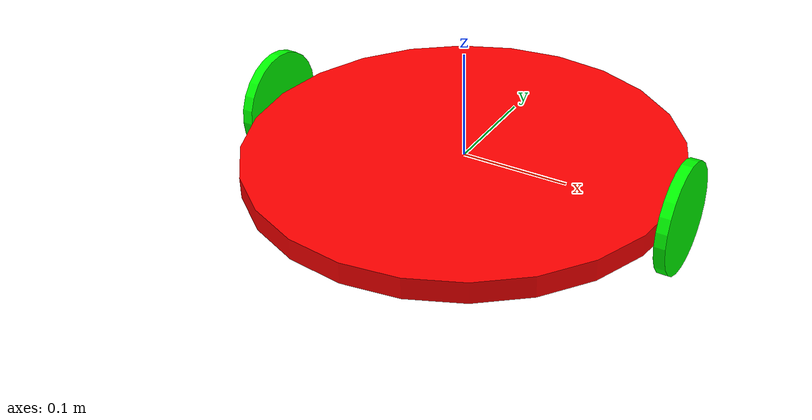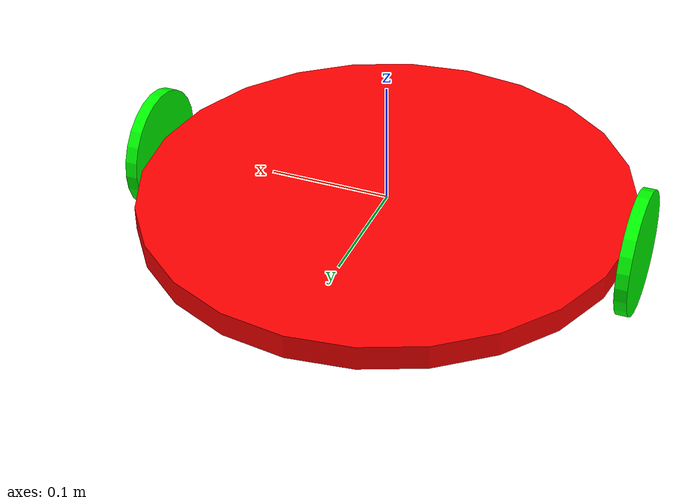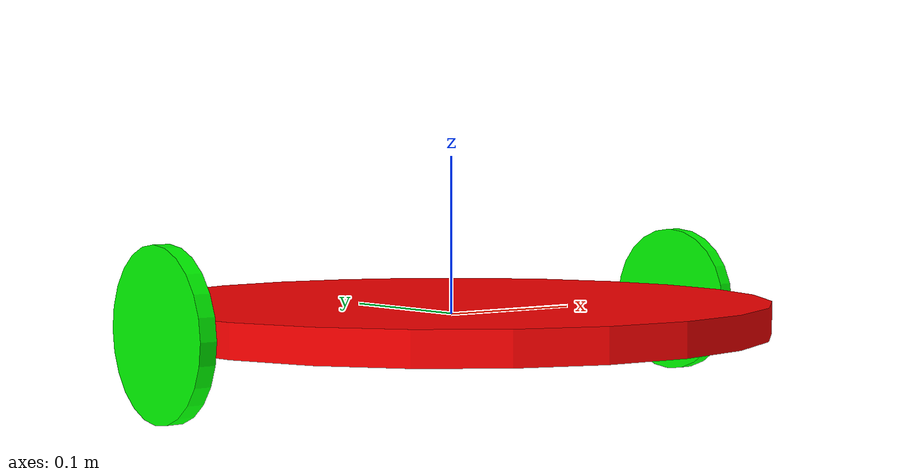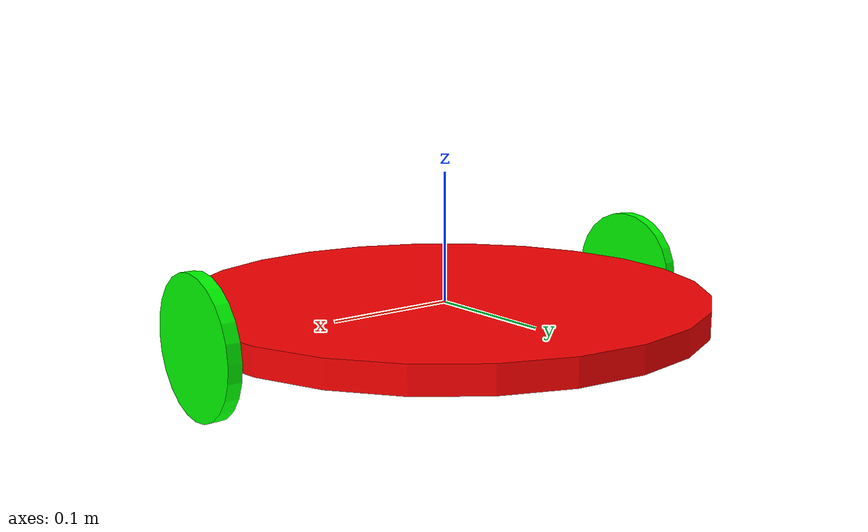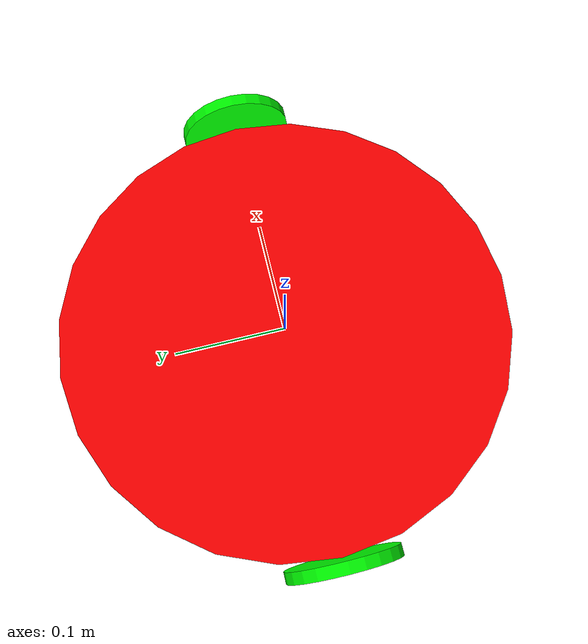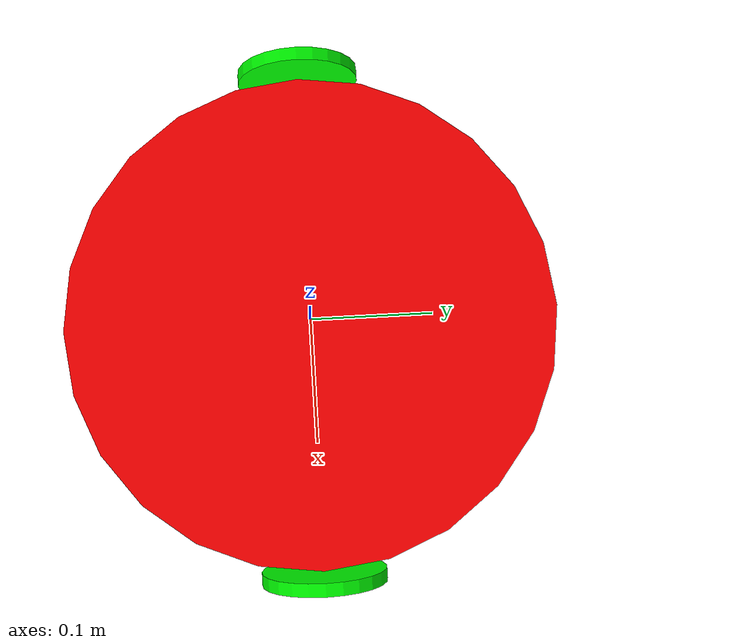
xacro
<?xml version="1.0"?>
<robot xmlns:xacro="http://www.ros.org/wiki/xacro" name="test_bot">

	<xacro:property name = "main_body_radius" value = "0.2"/>
	<xacro:property name = "main_body_length" value = "0.02"/>
	<xacro:property name = "main_body_mass" value = "1"/>
	<xacro:property name = "wheel_radius" value = "0.05"/>
	<xacro:property name = "wheel_length" value = "0.01"/>
	<xacro:property name = "wheel_mass" value = "0.2"/>

	<xacro:property name = "pie" value = "3.14159265359"/>
	<xacro:property name = "deg_to_rad" value = "${pie/180.}"/>

	<macro name="cylinder_inertia" params="m r h">
		<inertial>
			<mass value = "${m}"/>
			<inertia ixx ="${m*(3*r*r+h*h)/12}" ixy = "0" ixz = "0" iyy = "${m*(3*r*r+h*h)/12}" iyz = "0" izz = "${m*r*r/2}" />
		</inertial>
	</macro>

	<xacro:macro name = "wheel" params="name radius length">
		<link name = "${name}">
			<visual>
				<geometry>
					<cylinder length = "${length}" radius = "${radius}"/>
				</geometry>
				<origin rpy = "0 ${pie/2} 0"/>
				<material name = "green">
					<color rgba = "0 1 0 1"/>
				</material>
			</visual>
			<collision>
				<geometry>
					<cylinder length = "${length}" radius = "${radius}"/>
				</geometry>
				<origin rpy = "0 ${pie/2} 0"/>
			</collision>
			<xacro:cylinder_inertia m = "${wheel_mass}" r = "${wheel_radius}" h = "${wheel_length}"/>
		</link>

		<gazebo reference = "${name}">
			<material>Gazebo/Red</material>
		</gazebo>
	</xacro:macro>

	<xacro:macro name="transmission_block" params="joint_name">
		<transmission name="${'tran_'+joint_name}">
			<type>transmission_interface/SimpleTransmission</type>
			<joint name="${joint_name}">
				<hardwareInterface>PositionJointInterface</hardwareInterface>
			</joint>
			<actuator name="${'motor_'+joint_name}">
				<mechanicalReduction>1</mechanicalReduction>
			</actuator>
		</transmission>
	</xacro:macro>

	<gazebo>
		<plugin name="gazebo_ros_control" filename="libgazebo_ros_control.so">
			<robotNamespace>/test</robotNamespace>
		</plugin>
	</gazebo>

	<link name = "base_link">
		<visual>
			<geometry>
				<cylinder radius = "${main_body_radius}" length = "${main_body_length}"/>
			</geometry>
			<origin rpy = "0 0 0" xyz="0 0 0"/>
			<material name = "red">
				<color rgba = "1 0 0 1"/>
			</material>
		</visual>
		<collision>
			<geometry>
				<cylinder radius = "${main_body_radius}"  length = "${main_body_length}"/>
			</geometry>
			<origin rpy = "0 0 0"/>
		</collision>
		<xacro:cylinder_inertia m = "${main_body_mass}" r = "${main_body_radius}" h = "${main_body_length}"/>
	</link>

	<xacro:wheel name = "right_wheel" length = "${wheel_length}" radius = "${wheel_radius}"/>
	<xacro:wheel name = "left_wheel" length = "${wheel_length}" radius = "${wheel_radius}"/>

	<joint name="left_joint" type="revolute">
	    <parent link="base_link"/>
	    <child link="left_wheel"/>
	    <origin xyz="${main_body_radius + wheel_length/2} 0 0"/>
	    <axis xyz="1 0 0" />
	    <limit effort="300" velocity="0.1" lower="${-pie}" upper="${pie}"/>
	    <dynamics damping="50" friction="1"/>
	</joint>
	<xacro:transmission_block joint_name = "left_joint"/>

	<joint name="right_joint" type="revolute">
	    <parent link="base_link"/>
	    <child link="right_wheel"/>
	    <origin xyz="${-(main_body_radius + wheel_length/2)} 0 0"/>
	    <axis xyz="-1 0 0" />
	    <limit effort="300" velocity="0.1" lower="${-pie}" upper="${pie}"/>
	    <dynamics damping="50" friction="1"/>
	</joint>
	<xacro:transmission_block joint_name = "right_joint"/>

</robot>
